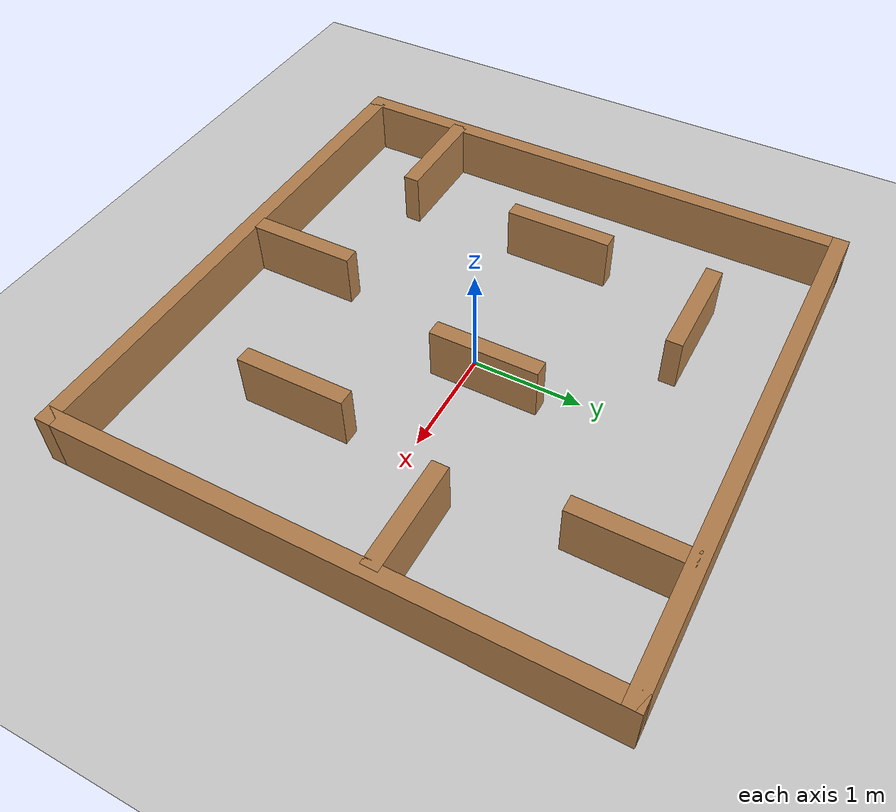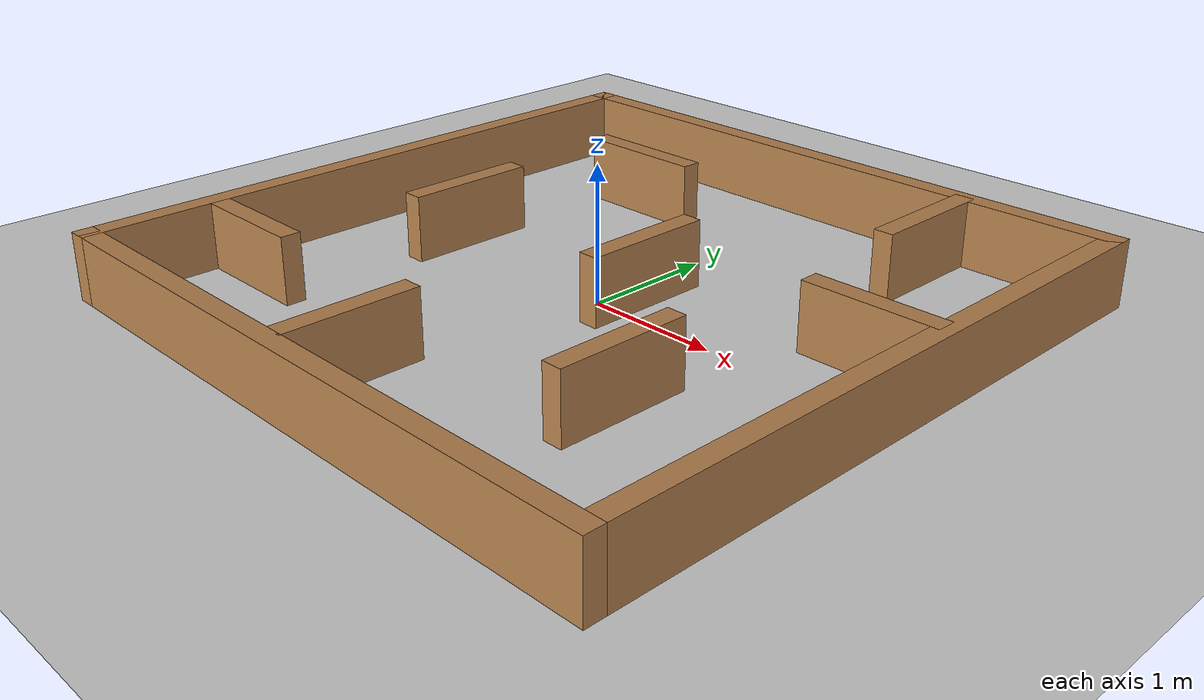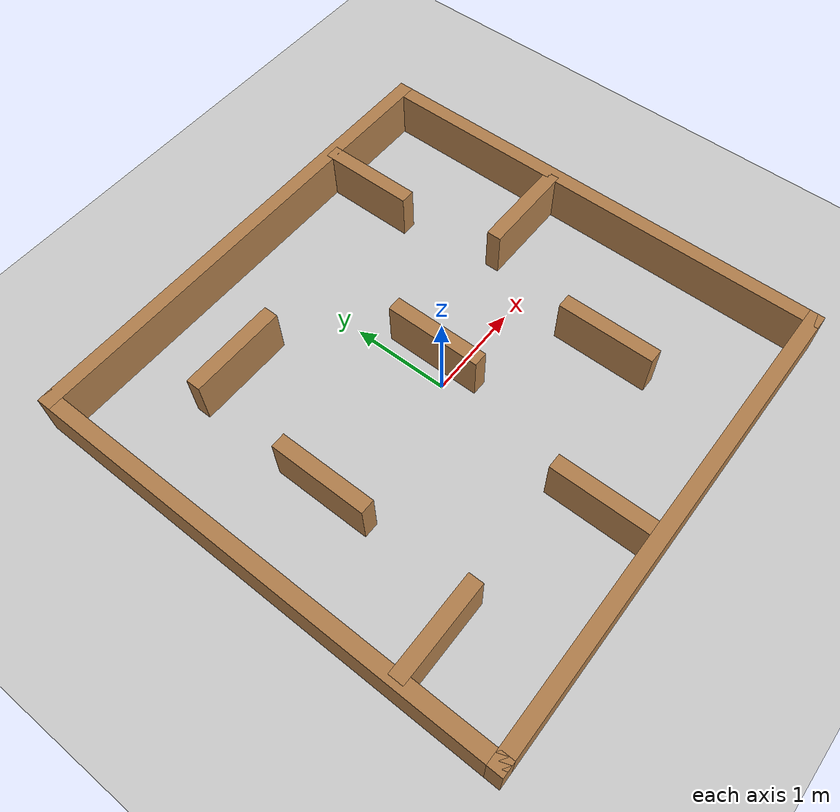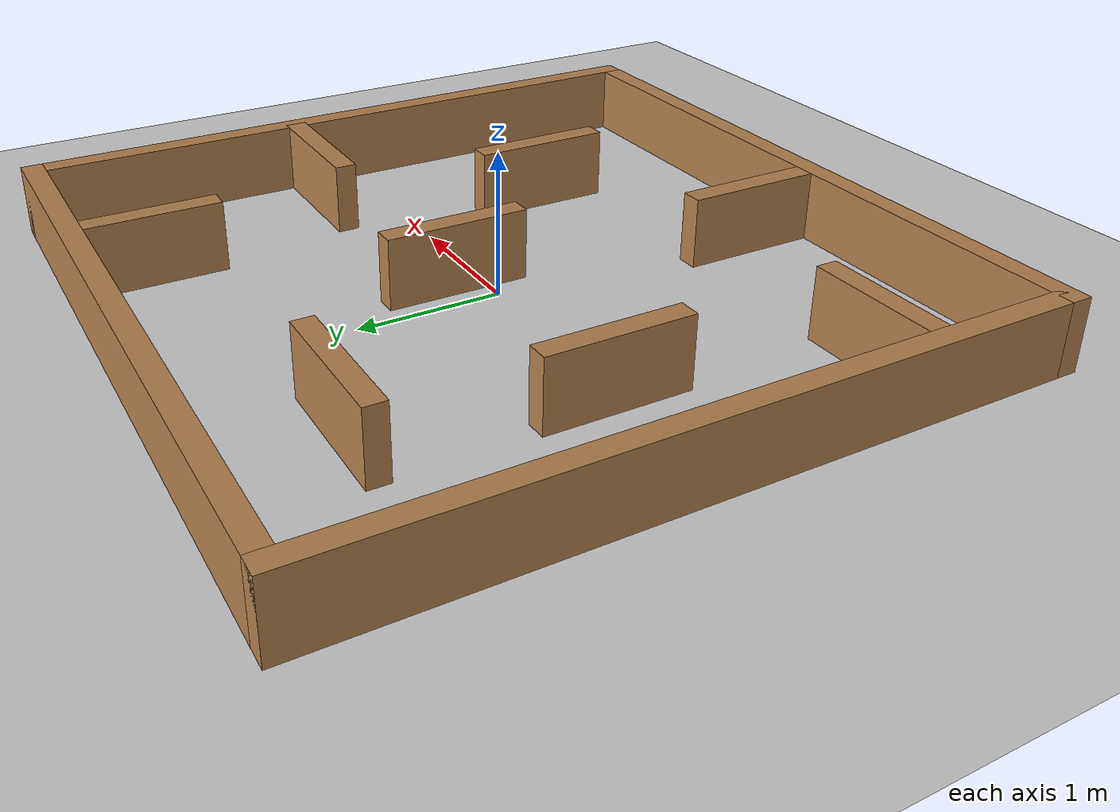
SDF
<sdf version='1.4'>
  <world name='default'>
    <!-- A global light source -->
    <include>
      <uri>model://sun</uri>
    </include>

    <!-- A ground plane -->
    <include>
      <uri>model://ground_plane</uri>
    </include>

    <physics type="ode">
      <real_time_update_rate>1000.0</real_time_update_rate>
      <max_step_size>0.001</max_step_size>
      <real_time_factor>1</real_time_factor>
      <ode>
        <solver>
          <type>quick</type>
          <iters>150</iters>
          <precon_iters>0</precon_iters>
          <sor>1.400000</sor>
          <use_dynamic_moi_rescaling>1</use_dynamic_moi_rescaling>
        </solver>
        <constraints>
          <cfm>0.00001</cfm>
          <erp>0.2</erp>
          <contact_max_correcting_vel>2000.000000</contact_max_correcting_vel>
          <contact_surface_layer>0.01000</contact_surface_layer>
        </constraints>
      </ode>
    </physics>

    <!-- Load world -->
    <include>
      <uri>model://KGCOE_PreTrainingModel</uri>
    </include>

    <scene>
      <ambient>0.4 0.4 0.4 1</ambient>
      <background>0.7 0.7 0.7 1</background>
      <shadows>true</shadows>
    </scene>

    <gui fullscreen='0'>
      <camera name='user_camera'>
        <pose>0.8 0.0 12.0 0 1.5708 0</pose>
        <view_controller>orbit</view_controller>
      </camera>
    </gui>
  </world>
</sdf>

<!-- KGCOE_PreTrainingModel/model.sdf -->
<sdf version='1.6'>
  <model name='KCGOE_Pre-TrainingModel'>
    <link name='Wall_0'>
      <pose frame=''>-2.425 0 0 0 -0 1.5708</pose>
      <self_collide>0</self_collide>
      <enable_wind>0</enable_wind>
      <kinematic>0</kinematic>
      <visual name='Wall_0_Visual'>
        <pose frame=''>0 0 0.25 0 -0 0</pose>
        <geometry>
          <box>
            <size>5 0.15 0.5</size>
          </box>
        </geometry>
        <material>
          <script>
            <uri>file://media/materials/scripts/gazebo.material</uri>
            <name>Gazebo/Wood</name>
          </script>
          <ambient>1 1 1 1</ambient>
        </material>
        <transparency>0</transparency>
        <cast_shadows>1</cast_shadows>
      </visual>
      <collision name='Wall_0_Collision'>
        <laser_retro>0</laser_retro>
        <max_contacts>10</max_contacts>
        <pose frame=''>0 0 0.25 0 -0 0</pose>
        <geometry>
          <box>
            <size>5 0.15 0.5</size>
          </box>
        </geometry>
        <surface>
          <friction>
            <ode>
              <mu>1</mu>
              <mu2>1</mu2>
              <fdir1>0 0 0</fdir1>
              <slip1>0</slip1>
              <slip2>0</slip2>
            </ode>
            <torsional>
              <coefficient>1</coefficient>
              <patch_radius>0</patch_radius>
              <surface_radius>0</surface_radius>
              <use_patch_radius>1</use_patch_radius>
              <ode>
                <slip>0</slip>
              </ode>
            </torsional>
          </friction>
          <bounce>
            <restitution_coefficient>0</restitution_coefficient>
            <threshold>1e+06</threshold>
          </bounce>
          <contact>
            <collide_without_contact>0</collide_without_contact>
            <collide_without_contact_bitmask>1</collide_without_contact_bitmask>
            <collide_bitmask>1</collide_bitmask>
            <ode>
              <soft_cfm>0</soft_cfm>
              <soft_erp>0.2</soft_erp>
              <kp>1e+13</kp>
              <kd>1</kd>
              <max_vel>0.01</max_vel>
              <min_depth>0</min_depth>
            </ode>
            <bullet>
              <split_impulse>1</split_impulse>
              <split_impulse_penetration_threshold>-0.01</split_impulse_penetration_threshold>
              <soft_cfm>0</soft_cfm>
              <soft_erp>0.2</soft_erp>
              <kp>1e+13</kp>
              <kd>1</kd>
            </bullet>
          </contact>
        </surface>
      </collision>
    </link>
    <link name='Wall_11'>
      <pose frame=''>-1.937 -1.467 0 0 -0 0</pose>
      <self_collide>0</self_collide>
      <enable_wind>0</enable_wind>
      <kinematic>0</kinematic>
      <visual name='Wall_11_Visual'>
        <pose frame=''>0 0 0.25 0 -0 0</pose>
        <geometry>
          <box>
            <size>1 0.15 0.5</size>
          </box>
        </geometry>
        <material>
          <script>
            <uri>file://media/materials/scripts/gazebo.material</uri>
            <name>Gazebo/Wood</name>
          </script>
          <ambient>1 1 1 1</ambient>
        </material>
        <transparency>0</transparency>
        <cast_shadows>1</cast_shadows>
      </visual>
      <collision name='Wall_11_Collision'>
        <laser_retro>0</laser_retro>
        <max_contacts>10</max_contacts>
        <pose frame=''>0 0 0.25 0 -0 0</pose>
        <geometry>
          <box>
            <size>1 0.15 0.5</size>
          </box>
        </geometry>
        <surface>
          <friction>
            <ode>
              <mu>1</mu>
              <mu2>1</mu2>
              <fdir1>0 0 0</fdir1>
              <slip1>0</slip1>
              <slip2>0</slip2>
            </ode>
            <torsional>
              <coefficient>1</coefficient>
              <patch_radius>0</patch_radius>
              <surface_radius>0</surface_radius>
              <use_patch_radius>1</use_patch_radius>
              <ode>
                <slip>0</slip>
              </ode>
            </torsional>
          </friction>
          <bounce>
            <restitution_coefficient>0</restitution_coefficient>
            <threshold>1e+06</threshold>
          </bounce>
          <contact>
            <collide_without_contact>0</collide_without_contact>
            <collide_without_contact_bitmask>1</collide_without_contact_bitmask>
            <collide_bitmask>1</collide_bitmask>
            <ode>
              <soft_cfm>0</soft_cfm>
              <soft_erp>0.2</soft_erp>
              <kp>1e+13</kp>
              <kd>1</kd>
              <max_vel>0.01</max_vel>
              <min_depth>0</min_depth>
            </ode>
            <bullet>
              <split_impulse>1</split_impulse>
              <split_impulse_penetration_threshold>-0.01</split_impulse_penetration_threshold>
              <soft_cfm>0</soft_cfm>
              <soft_erp>0.2</soft_erp>
              <kp>1e+13</kp>
              <kd>1</kd>
            </bullet>
          </contact>
        </surface>
      </collision>
    </link>
    <link name='Wall_13'>
      <pose frame=''>-0.22 -1.866 0 0 0 -1.5708</pose>
      <self_collide>0</self_collide>
      <enable_wind>0</enable_wind>
      <kinematic>0</kinematic>
      <visual name='Wall_13_Visual'>
        <pose frame=''>0 0 0.25 0 -0 0</pose>
        <geometry>
          <box>
            <size>1 0.15 0.5</size>
          </box>
        </geometry>
        <material>
          <script>
            <uri>file://media/materials/scripts/gazebo.material</uri>
            <name>Gazebo/Wood</name>
          </script>
          <ambient>1 1 1 1</ambient>
        </material>
        <transparency>0</transparency>
        <cast_shadows>1</cast_shadows>
      </visual>
      <collision name='Wall_13_Collision'>
        <laser_retro>0</laser_retro>
        <max_contacts>10</max_contacts>
        <pose frame=''>0 0 0.25 0 -0 0</pose>
        <geometry>
          <box>
            <size>1 0.15 0.5</size>
          </box>
        </geometry>
        <surface>
          <friction>
            <ode>
              <mu>1</mu>
              <mu2>1</mu2>
              <fdir1>0 0 0</fdir1>
              <slip1>0</slip1>
              <slip2>0</slip2>
            </ode>
            <torsional>
              <coefficient>1</coefficient>
              <patch_radius>0</patch_radius>
              <surface_radius>0</surface_radius>
              <use_patch_radius>1</use_patch_radius>
              <ode>
                <slip>0</slip>
              </ode>
            </torsional>
          </friction>
          <bounce>
            <restitution_coefficient>0</restitution_coefficient>
            <threshold>1e+06</threshold>
          </bounce>
          <contact>
            <collide_without_contact>0</collide_without_contact>
            <collide_without_contact_bitmask>1</collide_without_contact_bitmask>
            <collide_bitmask>1</collide_bitmask>
            <ode>
              <soft_cfm>0</soft_cfm>
              <soft_erp>0.2</soft_erp>
              <kp>1e+13</kp>
              <kd>1</kd>
              <max_vel>0.01</max_vel>
              <min_depth>0</min_depth>
            </ode>
            <bullet>
              <split_impulse>1</split_impulse>
              <split_impulse_penetration_threshold>-0.01</split_impulse_penetration_threshold>
              <soft_cfm>0</soft_cfm>
              <soft_erp>0.2</soft_erp>
              <kp>1e+13</kp>
              <kd>1</kd>
            </bullet>
          </contact>
        </surface>
      </collision>
    </link>
    <link name='Wall_15'>
      <pose frame=''>1.195 -1.002 0 0 -0 1.5708</pose>
      <self_collide>0</self_collide>
      <enable_wind>0</enable_wind>
      <kinematic>0</kinematic>
      <visual name='Wall_15_Visual'>
        <pose frame=''>0 0 0.25 0 -0 0</pose>
        <geometry>
          <box>
            <size>1 0.15 0.5</size>
          </box>
        </geometry>
        <material>
          <script>
            <uri>file://media/materials/scripts/gazebo.material</uri>
            <name>Gazebo/Wood</name>
          </script>
          <ambient>1 1 1 1</ambient>
        </material>
        <transparency>0</transparency>
        <cast_shadows>1</cast_shadows>
      </visual>
      <collision name='Wall_15_Collision'>
        <laser_retro>0</laser_retro>
        <max_contacts>10</max_contacts>
        <pose frame=''>0 0 0.25 0 -0 0</pose>
        <geometry>
          <box>
            <size>1 0.15 0.5</size>
          </box>
        </geometry>
        <surface>
          <friction>
            <ode>
              <mu>1</mu>
              <mu2>1</mu2>
              <fdir1>0 0 0</fdir1>
              <slip1>0</slip1>
              <slip2>0</slip2>
            </ode>
            <torsional>
              <coefficient>1</coefficient>
              <patch_radius>0</patch_radius>
              <surface_radius>0</surface_radius>
              <use_patch_radius>1</use_patch_radius>
              <ode>
                <slip>0</slip>
              </ode>
            </torsional>
          </friction>
          <bounce>
            <restitution_coefficient>0</restitution_coefficient>
            <threshold>1e+06</threshold>
          </bounce>
          <contact>
            <collide_without_contact>0</collide_without_contact>
            <collide_without_contact_bitmask>1</collide_without_contact_bitmask>
            <collide_bitmask>1</collide_bitmask>
            <ode>
              <soft_cfm>0</soft_cfm>
              <soft_erp>0.2</soft_erp>
              <kp>1e+13</kp>
              <kd>1</kd>
              <max_vel>0.01</max_vel>
              <min_depth>0</min_depth>
            </ode>
            <bullet>
              <split_impulse>1</split_impulse>
              <split_impulse_penetration_threshold>-0.01</split_impulse_penetration_threshold>
              <soft_cfm>0</soft_cfm>
              <soft_erp>0.2</soft_erp>
              <kp>1e+13</kp>
              <kd>1</kd>
            </bullet>
          </contact>
        </surface>
      </collision>
    </link>
    <link name='Wall_17'>
      <pose frame=''>1.288 1.93 0 0 0 -1.5708</pose>
      <self_collide>0</self_collide>
      <enable_wind>0</enable_wind>
      <kinematic>0</kinematic>
      <visual name='Wall_17_Visual'>
        <pose frame=''>0 0 0.25 0 -0 0</pose>
        <geometry>
          <box>
            <size>1 0.15 0.5</size>
          </box>
        </geometry>
        <material>
          <script>
            <uri>file://media/materials/scripts/gazebo.material</uri>
            <name>Gazebo/Wood</name>
          </script>
          <ambient>1 1 1 1</ambient>
        </material>
        <transparency>0</transparency>
        <cast_shadows>1</cast_shadows>
      </visual>
      <collision name='Wall_17_Collision'>
        <laser_retro>0</laser_retro>
        <max_contacts>10</max_contacts>
        <pose frame=''>0 0 0.25 0 -0 0</pose>
        <geometry>
          <box>
            <size>1 0.15 0.5</size>
          </box>
        </geometry>
        <surface>
          <friction>
            <ode>
              <mu>1</mu>
              <mu2>1</mu2>
              <fdir1>0 0 0</fdir1>
              <slip1>0</slip1>
              <slip2>0</slip2>
            </ode>
            <torsional>
              <coefficient>1</coefficient>
              <patch_radius>0</patch_radius>
              <surface_radius>0</surface_radius>
              <use_patch_radius>1</use_patch_radius>
              <ode>
                <slip>0</slip>
              </ode>
            </torsional>
          </friction>
          <bounce>
            <restitution_coefficient>0</restitution_coefficient>
            <threshold>1e+06</threshold>
          </bounce>
          <contact>
            <collide_without_contact>0</collide_without_contact>
            <collide_without_contact_bitmask>1</collide_without_contact_bitmask>
            <collide_bitmask>1</collide_bitmask>
            <ode>
              <soft_cfm>0</soft_cfm>
              <soft_erp>0.2</soft_erp>
              <kp>1e+13</kp>
              <kd>1</kd>
              <max_vel>0.01</max_vel>
              <min_depth>0</min_depth>
            </ode>
            <bullet>
              <split_impulse>1</split_impulse>
              <split_impulse_penetration_threshold>-0.01</split_impulse_penetration_threshold>
              <soft_cfm>0</soft_cfm>
              <soft_erp>0.2</soft_erp>
              <kp>1e+13</kp>
              <kd>1</kd>
            </bullet>
          </contact>
        </surface>
      </collision>
    </link>
    <link name='Wall_19'>
      <pose frame=''>1.91128 0.4632 0 0 -0 0</pose>
      <self_collide>0</self_collide>
      <enable_wind>0</enable_wind>
      <kinematic>0</kinematic>
      <visual name='Wall_19_Visual'>
        <pose frame=''>0 0 0.25 0 -0 0</pose>
        <geometry>
          <box>
            <size>1 0.15 0.5</size>
          </box>
        </geometry>
        <material>
          <script>
            <uri>file://media/materials/scripts/gazebo.material</uri>
            <name>Gazebo/Wood</name>
          </script>
          <ambient>1 1 1 1</ambient>
        </material>
        <transparency>0</transparency>
        <cast_shadows>1</cast_shadows>
      </visual>
      <collision name='Wall_19_Collision'>
        <laser_retro>0</laser_retro>
        <max_contacts>10</max_contacts>
        <pose frame=''>0 0 0.25 0 -0 0</pose>
        <geometry>
          <box>
            <size>1 0.15 0.5</size>
          </box>
        </geometry>
        <surface>
          <friction>
            <ode>
              <mu>1</mu>
              <mu2>1</mu2>
              <fdir1>0 0 0</fdir1>
              <slip1>0</slip1>
              <slip2>0</slip2>
            </ode>
            <torsional>
              <coefficient>1</coefficient>
              <patch_radius>0</patch_radius>
              <surface_radius>0</surface_radius>
              <use_patch_radius>1</use_patch_radius>
              <ode>
                <slip>0</slip>
              </ode>
            </torsional>
          </friction>
          <bounce>
            <restitution_coefficient>0</restitution_coefficient>
            <threshold>1e+06</threshold>
          </bounce>
          <contact>
            <collide_without_contact>0</collide_without_contact>
            <collide_without_contact_bitmask>1</collide_without_contact_bitmask>
            <collide_bitmask>1</collide_bitmask>
            <ode>
              <soft_cfm>0</soft_cfm>
              <soft_erp>0.2</soft_erp>
              <kp>1e+13</kp>
              <kd>1</kd>
              <max_vel>0.01</max_vel>
              <min_depth>0</min_depth>
            </ode>
            <bullet>
              <split_impulse>1</split_impulse>
              <split_impulse_penetration_threshold>-0.01</split_impulse_penetration_threshold>
              <soft_cfm>0</soft_cfm>
              <soft_erp>0.2</soft_erp>
              <kp>1e+13</kp>
              <kd>1</kd>
            </bullet>
          </contact>
        </surface>
      </collision>
    </link>
    <link name='Wall_2'>
      <pose frame=''>0 2.425 0 0 -0 0</pose>
      <self_collide>0</self_collide>
      <enable_wind>0</enable_wind>
      <kinematic>0</kinematic>
      <visual name='Wall_2_Visual'>
        <pose frame=''>0 0 0.25 0 -0 0</pose>
        <geometry>
          <box>
            <size>5 0.15 0.5</size>
          </box>
        </geometry>
        <material>
          <script>
            <uri>file://media/materials/scripts/gazebo.material</uri>
            <name>Gazebo/Wood</name>
          </script>
          <ambient>1 1 1 1</ambient>
        </material>
        <transparency>0</transparency>
        <cast_shadows>1</cast_shadows>
      </visual>
      <collision name='Wall_2_Collision'>
        <laser_retro>0</laser_retro>
        <max_contacts>10</max_contacts>
        <pose frame=''>0 0 0.25 0 -0 0</pose>
        <geometry>
          <box>
            <size>5 0.15 0.5</size>
          </box>
        </geometry>
        <surface>
          <friction>
            <ode>
              <mu>1</mu>
              <mu2>1</mu2>
              <fdir1>0 0 0</fdir1>
              <slip1>0</slip1>
              <slip2>0</slip2>
            </ode>
            <torsional>
              <coefficient>1</coefficient>
              <patch_radius>0</patch_radius>
              <surface_radius>0</surface_radius>
              <use_patch_radius>1</use_patch_radius>
              <ode>
                <slip>0</slip>
              </ode>
            </torsional>
          </friction>
          <bounce>
            <restitution_coefficient>0</restitution_coefficient>
            <threshold>1e+06</threshold>
          </bounce>
          <contact>
            <collide_without_contact>0</collide_without_contact>
            <collide_without_contact_bitmask>1</collide_without_contact_bitmask>
            <collide_bitmask>1</collide_bitmask>
            <ode>
              <soft_cfm>0</soft_cfm>
              <soft_erp>0.2</soft_erp>
              <kp>1e+13</kp>
              <kd>1</kd>
              <max_vel>0.01</max_vel>
              <min_depth>0</min_depth>
            </ode>
            <bullet>
              <split_impulse>1</split_impulse>
              <split_impulse_penetration_threshold>-0.01</split_impulse_penetration_threshold>
              <soft_cfm>0</soft_cfm>
              <soft_erp>0.2</soft_erp>
              <kp>1e+13</kp>
              <kd>1</kd>
            </bullet>
          </contact>
        </surface>
      </collision>
    </link>
    <link name='Wall_21'>
      <pose frame=''>0.204 0.215 0 0 0 -1.5708</pose>
      <self_collide>0</self_collide>
      <enable_wind>0</enable_wind>
      <kinematic>0</kinematic>
      <visual name='Wall_21_Visual'>
        <pose frame=''>0 0 0.25 0 -0 0</pose>
        <geometry>
          <box>
            <size>1 0.15 0.5</size>
          </box>
        </geometry>
        <material>
          <script>
            <uri>file://media/materials/scripts/gazebo.material</uri>
            <name>Gazebo/Wood</name>
          </script>
          <ambient>1 1 1 1</ambient>
        </material>
        <transparency>0</transparency>
        <cast_shadows>1</cast_shadows>
      </visual>
      <collision name='Wall_21_Collision'>
        <laser_retro>0</laser_retro>
        <max_contacts>10</max_contacts>
        <pose frame=''>0 0 0.25 0 -0 0</pose>
        <geometry>
          <box>
            <size>1 0.15 0.5</size>
          </box>
        </geometry>
        <surface>
          <friction>
            <ode>
              <mu>1</mu>
              <mu2>1</mu2>
              <fdir1>0 0 0</fdir1>
              <slip1>0</slip1>
              <slip2>0</slip2>
            </ode>
            <torsional>
              <coefficient>1</coefficient>
              <patch_radius>0</patch_radius>
              <surface_radius>0</surface_radius>
              <use_patch_radius>1</use_patch_radius>
              <ode>
                <slip>0</slip>
              </ode>
            </torsional>
          </friction>
          <bounce>
            <restitution_coefficient>0</restitution_coefficient>
            <threshold>1e+06</threshold>
          </bounce>
          <contact>
            <collide_without_contact>0</collide_without_contact>
            <collide_without_contact_bitmask>1</collide_without_contact_bitmask>
            <collide_bitmask>1</collide_bitmask>
            <ode>
              <soft_cfm>0</soft_cfm>
              <soft_erp>0.2</soft_erp>
              <kp>1e+13</kp>
              <kd>1</kd>
              <max_vel>0.01</max_vel>
              <min_depth>0</min_depth>
            </ode>
            <bullet>
              <split_impulse>1</split_impulse>
              <split_impulse_penetration_threshold>-0.01</split_impulse_penetration_threshold>
              <soft_cfm>0</soft_cfm>
              <soft_erp>0.2</soft_erp>
              <kp>1e+13</kp>
              <kd>1</kd>
            </bullet>
          </contact>
        </surface>
      </collision>
    </link>
    <link name='Wall_3'>
      <pose frame=''>2.425 0 0 0 0 -1.5708</pose>
      <self_collide>0</self_collide>
      <enable_wind>0</enable_wind>
      <kinematic>0</kinematic>
      <visual name='Wall_3_Visual'>
        <pose frame=''>0 0 0.25 0 -0 0</pose>
        <geometry>
          <box>
            <size>5 0.15 0.5</size>
          </box>
        </geometry>
        <material>
          <script>
            <uri>file://media/materials/scripts/gazebo.material</uri>
            <name>Gazebo/Wood</name>
          </script>
          <ambient>1 1 1 1</ambient>
        </material>
        <transparency>0</transparency>
        <cast_shadows>1</cast_shadows>
      </visual>
      <collision name='Wall_3_Collision'>
        <laser_retro>0</laser_retro>
        <max_contacts>10</max_contacts>
        <pose frame=''>0 0 0.25 0 -0 0</pose>
        <geometry>
          <box>
            <size>5 0.15 0.5</size>
          </box>
        </geometry>
        <surface>
          <friction>
            <ode>
              <mu>1</mu>
              <mu2>1</mu2>
              <fdir1>0 0 0</fdir1>
              <slip1>0</slip1>
              <slip2>0</slip2>
            </ode>
            <torsional>
              <coefficient>1</coefficient>
              <patch_radius>0</patch_radius>
              <surface_radius>0</surface_radius>
              <use_patch_radius>1</use_patch_radius>
              <ode>
                <slip>0</slip>
              </ode>
            </torsional>
          </friction>
          <bounce>
            <restitution_coefficient>0</restitution_coefficient>
            <threshold>1e+06</threshold>
          </bounce>
          <contact>
            <collide_without_contact>0</collide_without_contact>
            <collide_without_contact_bitmask>1</collide_without_contact_bitmask>
            <collide_bitmask>1</collide_bitmask>
            <ode>
              <soft_cfm>0</soft_cfm>
              <soft_erp>0.2</soft_erp>
              <kp>1e+13</kp>
              <kd>1</kd>
              <max_vel>0.01</max_vel>
              <min_depth>0</min_depth>
            </ode>
            <bullet>
              <split_impulse>1</split_impulse>
              <split_impulse_penetration_threshold>-0.01</split_impulse_penetration_threshold>
              <soft_cfm>0</soft_cfm>
              <soft_erp>0.2</soft_erp>
              <kp>1e+13</kp>
              <kd>1</kd>
            </bullet>
          </contact>
        </surface>
      </collision>
    </link>
    <link name='Wall_4'>
      <pose frame=''>0 -2.425 0 0 -0 3.14159</pose>
      <self_collide>0</self_collide>
      <enable_wind>0</enable_wind>
      <kinematic>0</kinematic>
      <visual name='Wall_4_Visual'>
        <pose frame=''>0 0 0.25 0 -0 0</pose>
        <geometry>
          <box>
            <size>5 0.15 0.5</size>
          </box>
        </geometry>
        <material>
          <script>
            <uri>file://media/materials/scripts/gazebo.material</uri>
            <name>Gazebo/Wood</name>
          </script>
          <ambient>1 1 1 1</ambient>
        </material>
        <transparency>0</transparency>
        <cast_shadows>1</cast_shadows>
      </visual>
      <collision name='Wall_4_Collision'>
        <laser_retro>0</laser_retro>
        <max_contacts>10</max_contacts>
        <pose frame=''>0 0 0.25 0 -0 0</pose>
        <geometry>
          <box>
            <size>5 0.15 0.5</size>
          </box>
        </geometry>
        <surface>
          <friction>
            <ode>
              <mu>1</mu>
              <mu2>1</mu2>
              <fdir1>0 0 0</fdir1>
              <slip1>0</slip1>
              <slip2>0</slip2>
            </ode>
            <torsional>
              <coefficient>1</coefficient>
              <patch_radius>0</patch_radius>
              <surface_radius>0</surface_radius>
              <use_patch_radius>1</use_patch_radius>
              <ode>
                <slip>0</slip>
              </ode>
            </torsional>
          </friction>
          <bounce>
            <restitution_coefficient>0</restitution_coefficient>
            <threshold>1e+06</threshold>
          </bounce>
          <contact>
            <collide_without_contact>0</collide_without_contact>
            <collide_without_contact_bitmask>1</collide_without_contact_bitmask>
            <collide_bitmask>1</collide_bitmask>
            <ode>
              <soft_cfm>0</soft_cfm>
              <soft_erp>0.2</soft_erp>
              <kp>1e+13</kp>
              <kd>1</kd>
              <max_vel>0.01</max_vel>
              <min_depth>0</min_depth>
            </ode>
            <bullet>
              <split_impulse>1</split_impulse>
              <split_impulse_penetration_threshold>-0.01</split_impulse_penetration_threshold>
              <soft_cfm>0</soft_cfm>
              <soft_erp>0.2</soft_erp>
              <kp>1e+13</kp>
              <kd>1</kd>
            </bullet>
          </contact>
        </surface>
      </collision>
    </link>
    <link name='Wall_7'>
      <pose frame=''>-1.064 1.548 0 0 -0 0</pose>
      <self_collide>0</self_collide>
      <enable_wind>0</enable_wind>
      <kinematic>0</kinematic>
      <visual name='Wall_7_Visual'>
        <pose frame=''>0 0 0.25 0 -0 0</pose>
        <geometry>
          <box>
            <size>1 0.15 0.5</size>
          </box>
        </geometry>
        <material>
          <script>
            <uri>file://media/materials/scripts/gazebo.material</uri>
            <name>Gazebo/Wood</name>
          </script>
          <ambient>1 1 1 1</ambient>
        </material>
        <transparency>0</transparency>
        <cast_shadows>1</cast_shadows>
      </visual>
      <collision name='Wall_7_Collision'>
        <laser_retro>0</laser_retro>
        <max_contacts>10</max_contacts>
        <pose frame=''>0 0 0.25 0 -0 0</pose>
        <geometry>
          <box>
            <size>1 0.15 0.5</size>
          </box>
        </geometry>
        <surface>
          <friction>
            <ode>
              <mu>1</mu>
              <mu2>1</mu2>
              <fdir1>0 0 0</fdir1>
              <slip1>0</slip1>
              <slip2>0</slip2>
            </ode>
            <torsional>
              <coefficient>1</coefficient>
              <patch_radius>0</patch_radius>
              <surface_radius>0</surface_radius>
              <use_patch_radius>1</use_patch_radius>
              <ode>
                <slip>0</slip>
              </ode>
            </torsional>
          </friction>
          <bounce>
            <restitution_coefficient>0</restitution_coefficient>
            <threshold>1e+06</threshold>
          </bounce>
          <contact>
            <collide_without_contact>0</collide_without_contact>
            <collide_without_contact_bitmask>1</collide_without_contact_bitmask>
            <collide_bitmask>1</collide_bitmask>
            <ode>
              <soft_cfm>0</soft_cfm>
              <soft_erp>0.2</soft_erp>
              <kp>1e+13</kp>
              <kd>1</kd>
              <max_vel>0.01</max_vel>
              <min_depth>0</min_depth>
            </ode>
            <bullet>
              <split_impulse>1</split_impulse>
              <split_impulse_penetration_threshold>-0.01</split_impulse_penetration_threshold>
              <soft_cfm>0</soft_cfm>
              <soft_erp>0.2</soft_erp>
              <kp>1e+13</kp>
              <kd>1</kd>
            </bullet>
          </contact>
        </surface>
      </collision>
    </link>
    <link name='Wall_9'>
      <pose frame=''>-1.502 0.092 0 0 0 -1.5708</pose>
      <self_collide>0</self_collide>
      <enable_wind>0</enable_wind>
      <kinematic>0</kinematic>
      <visual name='Wall_9_Visual'>
        <pose frame=''>0 0 0.25 0 -0 0</pose>
        <geometry>
          <box>
            <size>1 0.15 0.5</size>
          </box>
        </geometry>
        <material>
          <script>
            <uri>file://media/materials/scripts/gazebo.material</uri>
            <name>Gazebo/Wood</name>
          </script>
          <ambient>1 1 1 1</ambient>
        </material>
        <transparency>0</transparency>
        <cast_shadows>1</cast_shadows>
      </visual>
      <collision name='Wall_9_Collision'>
        <laser_retro>0</laser_retro>
        <max_contacts>10</max_contacts>
        <pose frame=''>0 0 0.25 0 -0 0</pose>
        <geometry>
          <box>
            <size>1 0.15 0.5</size>
          </box>
        </geometry>
        <surface>
          <friction>
            <ode>
              <mu>1</mu>
              <mu2>1</mu2>
              <fdir1>0 0 0</fdir1>
              <slip1>0</slip1>
              <slip2>0</slip2>
            </ode>
            <torsional>
              <coefficient>1</coefficient>
              <patch_radius>0</patch_radius>
              <surface_radius>0</surface_radius>
              <use_patch_radius>1</use_patch_radius>
              <ode>
                <slip>0</slip>
              </ode>
            </torsional>
          </friction>
          <bounce>
            <restitution_coefficient>0</restitution_coefficient>
            <threshold>1e+06</threshold>
          </bounce>
          <contact>
            <collide_without_contact>0</collide_without_contact>
            <collide_without_contact_bitmask>1</collide_without_contact_bitmask>
            <collide_bitmask>1</collide_bitmask>
            <ode>
              <soft_cfm>0</soft_cfm>
              <soft_erp>0.2</soft_erp>
              <kp>1e+13</kp>
              <kd>1</kd>
              <max_vel>0.01</max_vel>
              <min_depth>0</min_depth>
            </ode>
            <bullet>
              <split_impulse>1</split_impulse>
              <split_impulse_penetration_threshold>-0.01</split_impulse_penetration_threshold>
              <soft_cfm>0</soft_cfm>
              <soft_erp>0.2</soft_erp>
              <kp>1e+13</kp>
              <kd>1</kd>
            </bullet>
          </contact>
        </surface>
      </collision>
    </link>
    <static>1</static>
    <allow_auto_disable>1</allow_auto_disable>
  </model>
</sdf>
